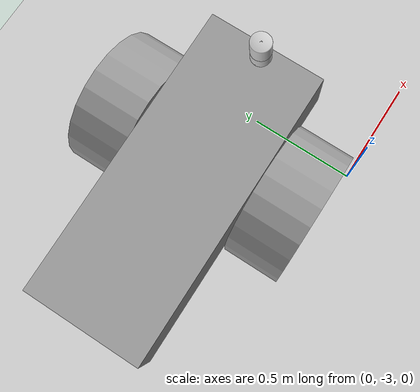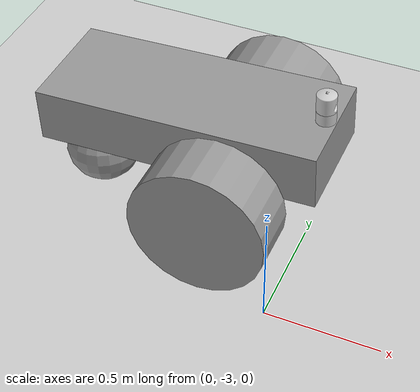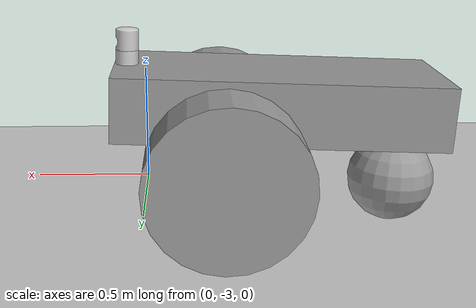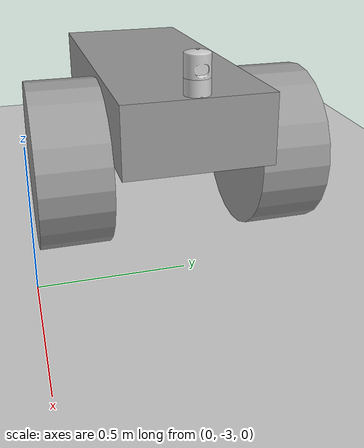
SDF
<sdf version="1.7">
 <world name="default">
  <light name="sun" type="directional">
   <pose>0 0 10 0 -0 0</pose>
   <diffuse>0.8 0.8 0.8 1</diffuse>
   <specular>0.2 0.2 0.2 1</specular>
   <attenuation>
    <range>1000</range>
    <constant>0.9</constant>
    <linear>0.01</linear>
    <quadratic>0.001</quadratic>
   </attenuation>
   <direction>-0.5 0.1 -0.9</direction>
   <spot><inner_angle>0</inner_angle><outer_angle>0</outer_angle><falloff>0</falloff></spot>
  </light>
  <model name="ground_plane">
   <static>1</static>
   <link name="link">
    <collision name="collision">
     <geometry><plane><normal>0 0 1</normal><size>100 100</size></plane></geometry>
     <surface>
      <contact><collide_bitmask>65535</collide_bitmask></contact>
      <friction><ode><mu>100</mu><mu2>50</mu2></ode></friction>
     </surface>
    </collision>
    <visual name="visual">
     <cast_shadows>0</cast_shadows>
     <geometry><plane><normal>0 0 1</normal><size>100 100</size></plane></geometry>
     <material>
      <script><uri>file://media/materials/scripts/gazebo.material</uri><name>Gazebo/Grey</name></script>
     </material>
    </visual>
   </link>
  </model>
  <gravity>0 0 -9.8</gravity>
  <magnetic_field>6e-06 2.3e-05 -4.2e-05</magnetic_field>
  <atmosphere type="adiabatic"/>
  <physics type="ode">
   <max_step_size>0.001</max_step_size>
   <real_time_factor>1</real_time_factor>
   <real_time_update_rate>1000</real_time_update_rate>
  </physics>
  <scene><ambient>0.4 0.4 0.4 1</ambient><background>0.7 0.7 0.7 1</background><shadows>1</shadows></scene>
  <spherical_coordinates>
   <surface_model>EARTH_WGS84</surface_model>
   <latitude_deg>0</latitude_deg>
   <longitude_deg>0</longitude_deg>
   <elevation>0</elevation>
   <heading_deg>0</heading_deg>
  </spherical_coordinates>
  <model name="sensorTutorial">
   <link name="link_0">
    <inertial>
     <mass>2.99525</mass>
     <inertia>
      <ixx>0.0768766</ixx>
      <ixy>0</ixy>
      <ixz>0</ixz>
      <iyy>0.400473</iyy>
      <iyz>0</iyz>
      <izz>0.448399</izz>
     </inertia>
    </inertial>
    <pose>-0.640062 -2.47606 0.441478 0 -0 0</pose>
    <visual name="visual">
     <geometry><box><size>1.24356 0.5 0.240819</size></box></geometry>
     <material>
      <lighting>1</lighting>
      <script><uri>file://media/materials/scripts/gazebo.material</uri><name>Gazebo/Grey</name></script>
      <shader type="pixel"><normal_map>__default__</normal_map></shader>
      <ambient>0.3 0.3 0.3 1</ambient>
      <diffuse>0.7 0.7 0.7 1</diffuse>
      <specular>0.01 0.01 0.01 1</specular>
      <emissive>0 0 0 1</emissive>
     </material>
    </visual>
    <collision name="collision">
     <geometry><box><size>1.24356 0.5 0.240819</size></box></geometry>
     <surface>
      <friction>
       <ode><mu>1</mu><mu2>1</mu2><fdir1>0 0 0</fdir1><slip1>0</slip1><slip2>0</slip2></ode>
       <torsional>
        <coefficient>1</coefficient>
        <patch_radius>0</patch_radius>
        <surface_radius>0</surface_radius>
        <use_patch_radius>1</use_patch_radius>
        <ode><slip>0</slip></ode>
       </torsional>
      </friction>
      <bounce><restitution_coefficient>0</restitution_coefficient><threshold>1e+06</threshold></bounce>
      <contact>
       <collide_without_contact>0</collide_without_contact>
       <collide_without_contact_bitmask>1</collide_without_contact_bitmask>
       <collide_bitmask>1</collide_bitmask>
       <ode>
        <soft_cfm>0</soft_cfm>
        <soft_erp>0.2</soft_erp>
        <kp>1e+13</kp>
        <kd>1</kd>
        <max_vel>0.01</max_vel>
        <min_depth>0</min_depth>
       </ode>
       <bullet>
        <split_impulse>1</split_impulse>
        <split_impulse_penetration_threshold>-0.01</split_impulse_penetration_threshold>
        <soft_cfm>0</soft_cfm>
        <soft_erp>0.2</soft_erp>
        <kp>1e+13</kp>
        <kd>1</kd>
       </bullet>
      </contact>
     </surface>
    </collision>
   </link>
   <link name="link_1">
    <inertial>
     <mass>1</mass>
     <inertia><ixx>0.145833</ixx><ixy>0</ixy><ixz>0</ixz><iyy>0.145833</iyy><iyz>0</iyz><izz>0.125</izz></inertia>
    </inertial>
    <pose>-0.440062 -2.08603 0.241478 1.5707 -0 0</pose>
    <visual name="visual">
     <geometry><cylinder><radius>0.3</radius><length>0.25</length></cylinder></geometry>
     <material>
      <lighting>1</lighting>
      <script><uri>file://media/materials/scripts/gazebo.material</uri><name>Gazebo/Grey</name></script>
      <shader type="pixel"><normal_map>__default__</normal_map></shader>
      <ambient>0.3 0.3 0.3 1</ambient>
      <diffuse>0.7 0.7 0.7 1</diffuse>
      <specular>0.01 0.01 0.01 1</specular>
      <emissive>0 0 0 1</emissive>
     </material>
    </visual>
    <collision name="collision">
     <geometry><cylinder><radius>0.3</radius><length>0.25</length></cylinder></geometry>
     <surface>
      <friction>
       <ode><mu>1</mu><mu2>1</mu2><fdir1>0 0 0</fdir1><slip1>0</slip1><slip2>0</slip2></ode>
       <torsional>
        <coefficient>1</coefficient>
        <patch_radius>0</patch_radius>
        <surface_radius>0</surface_radius>
        <use_patch_radius>1</use_patch_radius>
        <ode><slip>0</slip></ode>
       </torsional>
      </friction>
      <bounce><restitution_coefficient>0</restitution_coefficient><threshold>1e+06</threshold></bounce>
      <contact>
       <collide_without_contact>0</collide_without_contact>
       <collide_without_contact_bitmask>1</collide_without_contact_bitmask>
       <collide_bitmask>1</collide_bitmask>
       <ode>
        <soft_cfm>0</soft_cfm>
        <soft_erp>0.2</soft_erp>
        <kp>1e+13</kp>
        <kd>1</kd>
        <max_vel>0.01</max_vel>
        <min_depth>0</min_depth>
       </ode>
       <bullet>
        <split_impulse>1</split_impulse>
        <split_impulse_penetration_threshold>-0.01</split_impulse_penetration_threshold>
        <soft_cfm>0</soft_cfm>
        <soft_erp>0.2</soft_erp>
        <kp>1e+13</kp>
        <kd>1</kd>
       </bullet>
      </contact>
     </surface>
    </collision>
   </link>
   <link name="link_1_clone">
    <inertial>
     <mass>1</mass>
     <inertia><ixx>0.145833</ixx><ixy>0</ixy><ixz>0</ixz><iyy>0.145833</iyy><iyz>0</iyz><izz>0.125</izz></inertia>
    </inertial>
    <pose>-0.440062 -2.85109 0.241478 1.5707 -0 0</pose>
    <visual name="visual">
     <geometry><cylinder><radius>0.3</radius><length>0.25</length></cylinder></geometry>
     <material>
      <lighting>1</lighting>
      <script><uri>file://media/materials/scripts/gazebo.material</uri><name>Gazebo/Grey</name></script>
      <shader type="pixel"><normal_map>__default__</normal_map></shader>
      <ambient>0.3 0.3 0.3 1</ambient>
      <diffuse>0.7 0.7 0.7 1</diffuse>
      <specular>0.01 0.01 0.01 1</specular>
      <emissive>0 0 0 1</emissive>
     </material>
    </visual>
    <collision name="collision">
     <geometry><cylinder><radius>0.3</radius><length>0.25</length></cylinder></geometry>
     <surface>
      <friction>
       <ode><mu>1</mu><mu2>1</mu2><fdir1>0 0 0</fdir1><slip1>0</slip1><slip2>0</slip2></ode>
       <torsional>
        <coefficient>1</coefficient>
        <patch_radius>0</patch_radius>
        <surface_radius>0</surface_radius>
        <use_patch_radius>1</use_patch_radius>
        <ode><slip>0</slip></ode>
       </torsional>
      </friction>
      <bounce><restitution_coefficient>0</restitution_coefficient><threshold>1e+06</threshold></bounce>
      <contact>
       <collide_without_contact>0</collide_without_contact>
       <collide_without_contact_bitmask>1</collide_without_contact_bitmask>
       <collide_bitmask>1</collide_bitmask>
       <ode>
        <soft_cfm>0</soft_cfm>
        <soft_erp>0.2</soft_erp>
        <kp>1e+13</kp>
        <kd>1</kd>
        <max_vel>0.01</max_vel>
        <min_depth>0</min_depth>
       </ode>
       <bullet>
        <split_impulse>1</split_impulse>
        <split_impulse_penetration_threshold>-0.01</split_impulse_penetration_threshold>
        <soft_cfm>0</soft_cfm>
        <soft_erp>0.2</soft_erp>
        <kp>1e+13</kp>
        <kd>1</kd>
       </bullet>
      </contact>
     </surface>
    </collision>
   </link>
   <link name="link_2">
    <inertial>
     <mass>0.0386576</mass>
     <inertia>
      <ixx>0.000441933</ixx>
      <ixy>0</ixy>
      <ixz>0</ixz>
      <iyy>0.000441933</iyy>
      <iyz>0</iyz>
      <izz>0.000441933</izz>
     </inertia>
    </inertial>
    <pose>-1.11263 -2.47606 0.136651 0 -0 0</pose>
    <visual name="visual">
     <geometry><sphere><radius>0.169056</radius></sphere></geometry>
     <material>
      <lighting>1</lighting>
      <script><uri>file://media/materials/scripts/gazebo.material</uri><name>Gazebo/Grey</name></script>
      <shader type="pixel"/>
      <emissive>0 0 0 1</emissive>
     </material>
    </visual>
    <collision name="collision">
     <geometry><sphere><radius>0.169056</radius></sphere></geometry>
     <surface>
      <friction>
       <ode><mu>1</mu><mu2>1</mu2><fdir1>0 0 0</fdir1><slip1>0</slip1><slip2>0</slip2></ode>
       <torsional>
        <coefficient>1</coefficient>
        <patch_radius>0</patch_radius>
        <surface_radius>0</surface_radius>
        <use_patch_radius>1</use_patch_radius>
        <ode><slip>0</slip></ode>
       </torsional>
      </friction>
      <bounce><restitution_coefficient>0</restitution_coefficient><threshold>1e+06</threshold></bounce>
      <contact>
       <collide_without_contact>0</collide_without_contact>
       <collide_without_contact_bitmask>1</collide_without_contact_bitmask>
       <collide_bitmask>1</collide_bitmask>
       <ode>
        <soft_cfm>0</soft_cfm>
        <soft_erp>0.2</soft_erp>
        <kp>1e+13</kp>
        <kd>1</kd>
        <max_vel>0.01</max_vel>
        <min_depth>0</min_depth>
       </ode>
       <bullet>
        <split_impulse>1</split_impulse>
        <split_impulse_penetration_threshold>-0.01</split_impulse_penetration_threshold>
        <soft_cfm>0</soft_cfm>
        <soft_erp>0.2</soft_erp>
        <kp>1e+13</kp>
        <kd>1</kd>
       </bullet>
      </contact>
     </surface>
    </collision>
   </link>
   <model name="velodyne">
    <link name="base">
     <pose>0 0 0.029335 0 -0 0</pose>
     <inertial>
      <mass>1.2</mass>
      <inertia>
       <ixx>0.00108747</ixx>
       <iyy>0.00108747</iyy>
       <izz>0.00109244</izz>
       <ixy>0</ixy>
       <ixz>0</ixz>
       <iyz>0</iyz>
      </inertia>
     </inertial>
     <collision name="base_collision">
      <geometry><cylinder><radius>0.04267</radius><length>0.05867</length></cylinder></geometry>
     </collision>
     <visual name="base_visual">
      <pose>0 0 -0.029335 0 -0 0</pose>
      <geometry><mesh><uri>model://velodyne_hdl32/meshes/velodyne_base.dae</uri></mesh></geometry>
     </visual>
    </link>
    <link name="top">
     <pose>0 0 0.095455 0 -0 0</pose>
     <inertial>
      <mass>0.1</mass>
      <inertia>
       <ixx>9.0623e-05</ixx>
       <iyy>9.0623e-05</iyy>
       <izz>9.1036e-05</izz>
       <ixy>0</ixy>
       <ixz>0</ixz>
       <iyz>0</iyz>
      </inertia>
     </inertial>
     <collision name="top_collision">
      <geometry><cylinder><radius>0.04267</radius><length>0.07357</length></cylinder></geometry>
     </collision>
     <visual name="top_visual">
      <pose>0 0 -0.037679 0 -0 1.5707</pose>
      <geometry><mesh><uri>model://velodyne_hdl32/meshes/velodyne_top.dae</uri></mesh></geometry>
     </visual>
     <sensor name="sensor" type="ray">
      <pose>0 0 -0.004645 1.5707 -0 0</pose>
      <visualize>1</visualize>
      <update_rate>30</update_rate>
      <ray>
       <noise><type>gaussian</type><mean>0</mean><stddev>0.1</stddev></noise>
       <scan>
        <horizontal>
         <samples>32</samples>
         <resolution>1</resolution>
         <min_angle>-0.535292</min_angle>
         <max_angle>0.186227</max_angle>
        </horizontal>
        <vertical><samples>1</samples><min_angle>0</min_angle><max_angle>0</max_angle></vertical>
       </scan>
       <range><min>0.1</min><max>70</max><resolution>0.02</resolution></range>
      </ray>
     </sensor>
    </link>
    <joint name="joint" type="revolute">
     <pose>0 0 -0.036785 0 -0 0</pose>
     <parent>base</parent>
     <child>top</child>
     <axis>
      <xyz>0 0 1</xyz>
      <limit><lower>-1e+16</lower><upper>1e+16</upper></limit>
      <dynamics><spring_reference>0</spring_reference><spring_stiffness>0</spring_stiffness></dynamics>
     </axis>
    </joint>
    <pose>-0.065393 -2.47606 0.557879 0 -0 0</pose>
   </model>
   <joint name="link_1_JOINT_2" type="revolute">
    <parent>link_0</parent>
    <child>link_1</child>
    <axis>
     <xyz>0 0 1</xyz>
     <limit>
      <lower>-1.79769e+308</lower>
      <upper>1.79769e+308</upper>
      <effort>-1</effort>
      <velocity>-1</velocity>
     </limit>
     <dynamics>
      <spring_reference>0</spring_reference>
      <spring_stiffness>0</spring_stiffness>
      <damping>0</damping>
      <friction>0</friction>
     </dynamics>
    </axis>
    <physics>
     <ode><limit><cfm>0</cfm><erp>0.2</erp></limit><suspension><cfm>0</cfm><erp>0.2</erp></suspension></ode>
    </physics>
   </joint>
   <joint name="link_1_clone_JOINT_1" type="revolute">
    <parent>link_0</parent>
    <child>link_1_clone</child>
    <axis>
     <xyz>0 0 1</xyz>
     <limit>
      <lower>-1.79769e+308</lower>
      <upper>1.79769e+308</upper>
      <effort>-1</effort>
      <velocity>-1</velocity>
     </limit>
     <dynamics>
      <spring_reference>0</spring_reference>
      <spring_stiffness>0</spring_stiffness>
      <damping>0</damping>
      <friction>0</friction>
     </dynamics>
    </axis>
    <physics>
     <ode><limit><cfm>0</cfm><erp>0.2</erp></limit><suspension><cfm>0</cfm><erp>0.2</erp></suspension></ode>
    </physics>
   </joint>
   <joint name="link_2_JOINT_3" type="ball">
    <parent>link_0</parent>
    <child>link_2</child>
    <physics>
     <ode><limit><cfm>0</cfm><erp>0.2</erp></limit><suspension><cfm>0</cfm><erp>0.2</erp></suspension></ode>
    </physics>
   </joint>
   <joint name="base_JOINT_4" type="fixed">
    <parent>link_0</parent>
    <child>velodyne::base</child>
    <physics>
     <ode><limit><cfm>0</cfm><erp>0.2</erp></limit><suspension><cfm>0</cfm><erp>0.2</erp></suspension></ode>
    </physics>
   </joint>
   <static>0</static>
   <pose>0.127017 -0.000172 0.075867 1e-06 -0.038975 0.001564</pose>
  </model>
 </world>
</sdf>
